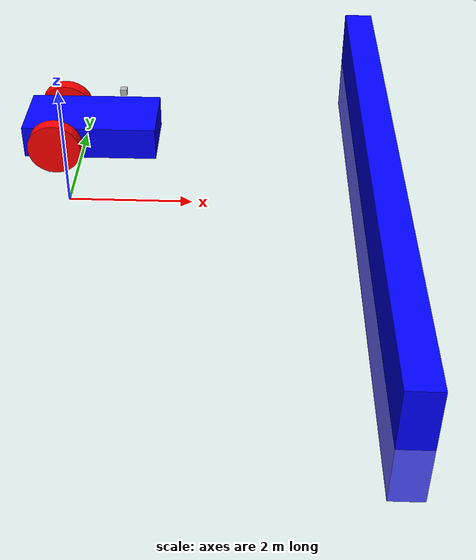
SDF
<?xml version="1.0" ?>
<sdf version="1.8">
    <world name="test_world">
        <physics name="1ms" type="ignored">
            <max_step_size>0.001</max_step_size>
            <real_time_factor>1.0</real_time_factor>
        </physics>
        <plugin filename="ignition-gazebo-physics-system" name="ignition::gazebo::systems::Physics">
        </plugin>
        <plugin filename="ignition-gazebo-user-commands-system" name="ignition::gazebo::systems::UserCommands">
        </plugin>
        <plugin filename="ignition-gazebo-scene-broadcaster-system" name="ignition::gazebo::systems::SceneBroadcaster">
        </plugin>
        <plugin filename="ignition-gazebo-imu-system" name="ignition::gazebo::systems::Imu">
        </plugin>
        <plugin filename="ignition-gazebo-sensors-system" name="ignition::gazebo::systems::Sensors">
            <render_engine>ogre</render_engine>
        </plugin>
        <plugin filename="ignition-gazebo-contact-system" name="ignition::gazebo::systems::Contact">
        </plugin>

        <light type="directional" name="sun">
            <cast_shadows>true</cast_shadows>
            <pose>0 0 10 0 0 0</pose>
            <diffuse>0.8 0.8 0.8 1</diffuse>
            <specular>0.2 0.2 0.2 1</specular>
            <attenuation>
                <range>1000</range>
                <constant>0.9</constant>
                <linear>0.01</linear>
                <quadratic>0.001</quadratic>
            </attenuation>
            <direction>-0.5 0.1 -0.9</direction>
        </light>

        <model name="ground_plane">
            <static>true</static>
            <link name="link">
                <collision name="collision">
                    <geometry>
                        <plane>
                            <normal>0 0 1</normal>
                        </plane>
                    </geometry>
                </collision>
                <visual name="visual">
                    <geometry>
                        <plane>
                            <normal>0 0 1</normal>
                            <size>100 100</size>
                        </plane>
                    </geometry>
                    <material>
                        <ambient>0.8 0.8 0.8 1</ambient>
                        <diffuse>0.8 0.8 0.8 1</diffuse>
                        <specular>0.8 0.8 0.8 1</specular>
                    </material>
                </visual>
            </link>
        </model>

        <model name='vehicle_blue' canonical_link='chassis'>
            <pose relative_to='world'>0 0 1 0 0 0</pose>            <!--the pose is relative to the world by default-->

            <frame name="lidar_frame" attached_to='chassis'>
                <pose>0.8 0 0.5 0 0 0</pose>
            </frame>

            <link name='chassis'>
                <pose relative_to='__model__'>0.5 0 0.4 0 0 0</pose>
                <inertial>                    <!--inertial properties of the link mass, inertia matix-->
                    <mass>1.14395</mass>
                    <inertia>
                        <ixx>0.126164</ixx>
                        <ixy>0</ixy>
                        <ixz>0</ixz>
                        <iyy>0.416519</iyy>
                        <iyz>0</iyz>
                        <izz>0.481014</izz>
                    </inertia>
                </inertial>
                <visual name='visual'>
                    <geometry>
                        <box>
                            <size>2.0 1.0 0.5</size>                            <!--question: this size is in meter-->
                        </box>
                    </geometry>
                    <!--let's add color to our link-->
                    <material>
                        <ambient>0.0 0.0 1.0 1</ambient>
                        <diffuse>0.0 0.0 1.0 1</diffuse>
                        <specular>0.0 0.0 1.0 1</specular>
                    </material>
                </visual>
                <collision name='collision'>                    <!--todo: describe why we need the collision-->
                    <geometry>
                        <box>
                            <size>2.0 1.0 0.5</size>
                        </box>
                    </geometry>
                </collision>
                <sensor name="imu_sensor" type="imu">
                    <always_on>1</always_on>
                    <update_rate>1</update_rate>
                    <visualize>true</visualize>
                    <topic>imu</topic>
                </sensor>
                <sensor name='gpu_lidar' type='gpu_lidar'>"
                    <pose relative_to='lidar_frame'>0 0 0 0 0 0</pose>
                    <topic>lidar</topic>
                    <update_rate>5</update_rate>
                    <always_on>true</always_on>
                    <ray>
                        <scan>
                            <horizontal>
                                <samples>360</samples>
                                <resolution>1.000000</resolution>
                                <min_angle>0.000000</min_angle>
                                <max_angle>6.280000</max_angle>
                            </horizontal>
                        </scan>
                        <range>
                            <min>0.120000</min>
                            <max>3.5</max>
                            <resolution>0.015000</resolution>
                        </range>
                        <noise>
                            <type>gaussian</type>
                            <mean>0.0</mean>
                            <stddev>0.01</stddev>
                        </noise>
                    </ray>
                    <alwaysOn>1</alwaysOn>
                    <visualize>true</visualize>
                </sensor>
            </link>

            <!--let's build the left wheel-->
            <link name='left_wheel'>
                <pose relative_to="chassis">-0.5 0.6 0 -1.5707 0 0</pose>                <!--angles are in radian-->
                <inertial>
                    <mass>2</mass>
                    <inertia>
                        <ixx>0.145833</ixx>
                        <ixy>0</ixy>
                        <ixz>0</ixz>
                        <iyy>0.145833</iyy>
                        <iyz>0</iyz>
                        <izz>0.125</izz>
                    </inertia>
                </inertial>
                <visual name='visual'>
                    <geometry>
                        <cylinder>
                            <radius>0.4</radius>
                            <length>0.2</length>
                        </cylinder>
                    </geometry>
                    <material>
                        <ambient>1.0 0.0 0.0 1</ambient>
                        <diffuse>1.0 0.0 0.0 1</diffuse>
                        <specular>1.0 0.0 0.0 1</specular>
                    </material>
                </visual>
                <collision name='collision'>
                    <geometry>
                        <cylinder>
                            <radius>0.4</radius>
                            <length>0.2</length>
                        </cylinder>
                    </geometry>
                </collision>
            </link>

            <!--copy and paste for right wheel but change position-->
            <link name='right_wheel'>
                <pose relative_to="chassis">-0.5 -0.6 0 -1.5707 0 0</pose>                <!--angles are in radian-->
                <inertial>
                    <mass>1</mass>
                    <inertia>
                        <ixx>0.145833</ixx>
                        <ixy>0</ixy>
                        <ixz>0</ixz>
                        <iyy>0.145833</iyy>
                        <iyz>0</iyz>
                        <izz>0.125</izz>
                    </inertia>
                </inertial>
                <visual name='visual'>
                    <geometry>
                        <cylinder>
                            <radius>0.4</radius>
                            <length>0.2</length>
                        </cylinder>
                    </geometry>
                    <material>
                        <ambient>1.0 0.0 0.0 1</ambient>
                        <diffuse>1.0 0.0 0.0 1</diffuse>
                        <specular>1.0 0.0 0.0 1</specular>
                    </material>
                </visual>
                <collision name='collision'>
                    <geometry>
                        <cylinder>
                            <radius>0.4</radius>
                            <length>0.2</length>
                        </cylinder>
                    </geometry>
                </collision>
            </link>

            <frame name="caster_frame" attached_to='chassis'>
                <pose>0.8 0 -0.2 0 0 0</pose>
            </frame>

            <!--caster wheel-->
            <link name='caster'>
                <pose relative_to='caster_frame'/>
                <inertial>
                    <mass>1</mass>
                    <inertia>
                        <ixx>0.1</ixx>
                        <ixy>0</ixy>
                        <ixz>0</ixz>
                        <iyy>0.1</iyy>
                        <iyz>0</iyz>
                        <izz>0.1</izz>
                    </inertia>
                </inertial>
                <visual name='visual'>
                    <geometry>
                        <sphere>
                            <radius>0.2</radius>
                        </sphere>
                    </geometry>
                    <material>
                        <ambient>0.0 1 0.0 1</ambient>
                        <diffuse>0.0 1 0.0 1</diffuse>
                        <specular>0.0 1 0.0 1</specular>
                    </material>
                </visual>
                <collision name='collision'>
                    <geometry>
                        <sphere>
                            <radius>0.2</radius>
                        </sphere>
                    </geometry>
                    <surface>
                        <friction>
                            <ode>
                                <mu>0</mu>
                                <mu2>0</mu2>
                            </ode>
                        </friction>
                    </surface>
                </collision>
            </link>

            <link name="camera">
                <pose relative_to='__model__'>1 0.05 1 0 0 0</pose>
                <inertial>
                    <mass>0.1</mass>
                    <inertia>
                        <ixx>0.000166667</ixx>
                        <iyy>0.000166667</iyy>
                        <izz>0.000166667</izz>
                    </inertia>
                </inertial>
                <collision name="collision">
                    <geometry>
                        <box>
                            <size>0.1 0.1 0.1</size>
                        </box>
                    </geometry>
                </collision>
                <visual name="visual">
                    <geometry>
                        <box>
                            <size>0.1 0.1 0.1</size>
                        </box>
                    </geometry>
                </visual>
                <sensor name="camera" type="camera">
                    <camera>
                        <horizontal_fov>1.047</horizontal_fov>
                        <image>
                            <width>640</width>
                            <height>480</height>
                        </image>
                        <clip>
                            <near>0.1</near>
                            <far>100</far>
                        </clip>
                    </camera>
                    <always_on>1</always_on>
                    <update_rate>30</update_rate>
                    <visualize>true</visualize>
                    <topic>camera</topic>
                </sensor>
            </link>

            <joint name="camera_joint" type="fixed">
                <pose relative_to='camera'/>
                <parent>chassis</parent>
                <child>camera</child>
            </joint>

            <!--connecting these links together using joints-->
            <joint name='left_wheel_joint' type='revolute'>                <!--continous joint is not supported yet-->
                <pose relative_to='left_wheel'/>
                <parent>chassis</parent>
                <child>left_wheel</child>
                <axis>
                    <xyz expressed_in='__model__'>0 1 0</xyz>                    <!--can be defined as any frame or even arbitrary frames-->
                    <limit>
                        <lower>-1.79769e+308</lower>                        <!--negative infinity-->
                        <upper>1.79769e+308</upper>                        <!--positive infinity-->
                    </limit>
                </axis>
            </joint>

            <joint name='right_wheel_joint' type='revolute'>
                <pose relative_to='right_wheel'/>
                <parent>chassis</parent>
                <child>right_wheel</child>
                <axis>
                    <xyz expressed_in='__model__'>0 1 0</xyz>
                    <limit>
                        <lower>-1.79769e+308</lower>                        <!--negative infinity-->
                        <upper>1.79769e+308</upper>                        <!--positive infinity-->
                    </limit>
                </axis>
            </joint>

            <!--different type of joints ball joint-->            <!--defult value is the child-->
            <joint name='caster_wheel' type='fixed'>
                <parent>chassis</parent>
                <child>caster</child>
            </joint>

            <!--diff drive plugin-->
            <plugin filename="libignition-gazebo-diff-drive-system.so" name="ignition::gazebo::systems::DiffDrive">
                <left_joint>left_wheel_joint</left_joint>
                <right_joint>right_wheel_joint</right_joint>
                <wheel_separation>1.2</wheel_separation>
                <wheel_radius>0.4</wheel_radius>
                <odom_publish_frequency>1</odom_publish_frequency>
                <topic>cmd_vel</topic>
            </plugin>
        </model>

        <!--wall-->
        <model name='wall'>
            <static>true</static>
            <pose>5 0 0 0 0 0</pose>            <!--pose relative to the world-->
            <link name='box'>
                <pose/>
                <inertial>                    <!--inertial properties of the link mass, inertia matix-->
                    <mass>1.14395</mass>
                    <inertia>
                        <ixx>9.532917</ixx>
                        <ixy>0</ixy>
                        <ixz>0</ixz>
                        <iyy>0.023832</iyy>
                        <iyz>0</iyz>
                        <izz>9.556749</izz>
                    </inertia>
                </inertial>
                <visual name='visual'>
                    <geometry>
                        <box>
                            <size>0.5 10.0 2.0</size>
                        </box>
                    </geometry>
                    <!--let's add color to our link-->
                    <material>
                        <ambient>0.0 0.0 1.0 1</ambient>
                        <diffuse>0.0 0.0 1.0 1</diffuse>
                        <specular>0.0 0.0 1.0 1</specular>
                    </material>
                </visual>
                <collision name='collision'>                    <!--todo: describe why we need the collision-->
                    <geometry>
                        <box>
                            <size>0.5 10.0 2.0</size>
                        </box>
                    </geometry>
                </collision>
                <sensor name='sensor_contact' type='contact'>
                    <contact>
                        <collision>collision</collision>
                    </contact>
                </sensor>
            </link>
            <plugin filename="ignition-gazebo-touchplugin-system" name="ignition::gazebo::systems::TouchPlugin">
                <target>vehicle_blue</target>
                <namespace>wall</namespace>
                <time>0.001</time>
                <enabled>true</enabled>
            </plugin>
        </model>

        <!-- Moving Forward-->
        <plugin filename="ignition-gazebo-triggered-publisher-system" name="ignition::gazebo::systems::TriggeredPublisher">
            <input type="ignition.msgs.Int32" topic="/keyboard/keypress">
                <match field="data">16777235</match>
            </input>
            <output type="ignition.msgs.Twist" topic="/cmd_vel">
                linear: {x: 0.5}, angular: {z: 0.0}
            </output>
        </plugin>

        <!-- Moving Backward-->
        <plugin filename="ignition-gazebo-triggered-publisher-system" name="ignition::gazebo::systems::TriggeredPublisher">
            <input type="ignition.msgs.Int32" topic="/keyboard/keypress">
                <match field="data">16777237</match>
            </input>
            <output type="ignition.msgs.Twist" topic="/cmd_vel">
                linear: {x: -0.5}, angular: {z: 0.0}
            </output>
        </plugin>

        <!-- Rotating right-->
        <plugin filename="ignition-gazebo-triggered-publisher-system" name="ignition::gazebo::systems::TriggeredPublisher">
            <input type="ignition.msgs.Int32" topic="/keyboard/keypress">
                <match field="data">16777236</match>
            </input>
            <output type="ignition.msgs.Twist" topic="/cmd_vel">
                linear: {x: 0.0}, angular: {z: -0.5}
            </output>
        </plugin>

        <!--Rotating left-->
        <plugin filename="ignition-gazebo-triggered-publisher-system" name="ignition::gazebo::systems::TriggeredPublisher">
            <input type="ignition.msgs.Int32" topic="/keyboard/keypress">
                <match field="data">16777234</match>
            </input>
            <output type="ignition.msgs.Twist" topic="/cmd_vel">
                linear: {x: 0.0}, angular: {z: 0.5}
            </output>
        </plugin>

        <!--stop when hit the wall-->
        <plugin filename="ignition-gazebo-triggered-publisher-system" name="ignition::gazebo::systems::TriggeredPublisher">
            <input type="ignition.msgs.Boolean" topic="/wall/touched">
                <match>data: true</match>
            </input>
            <output type="ignition.msgs.Twist" topic="/cmd_vel">
                linear: {x: 0.0}, angular: {z: 0.0}
            </output>
        </plugin>
    </world>
</sdf>
